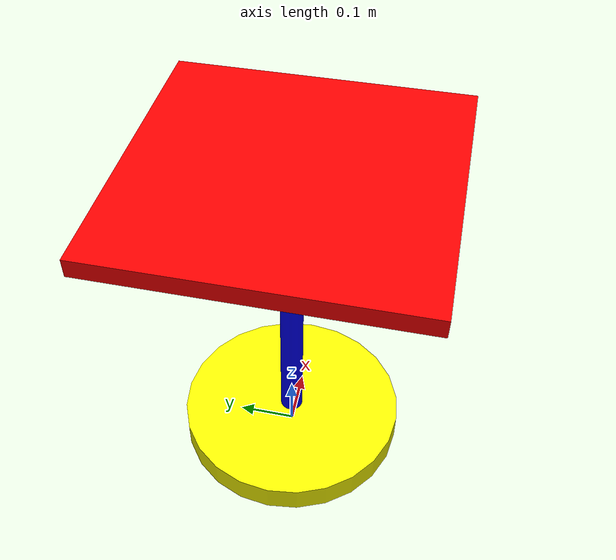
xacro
<?xml version="1.0"?>

<robot
    xmlns:xacro="http://www.ros.org/wiki/xacro"
    xmlns:sensor="htttp:/playerstage.sourceforce.net/gazebo/xmlschema/#sensor"
    xmlns:controller="htttp:/playerstage.sourceforce.net/gazebo/xmlschema/#controller"
    xmlns:interface="htttp:/playerstage.sourceforce.net/gazebo/xmlschema/#interface"
    name="pan_tilt" >

    <xacro:property name="base_link_length" value="0.05"  />
    <xacro:property name="base_link_radius" value="0.2"  />

    <xacro:property name="pan_link_length" value="0.5"  />
    <xacro:property name="pan_link_radius" value="0.02"  />

    <xacro:property name="bearing_radius" value="0.02"  />

    <xacro:property name="tilt_link_size" value="0.5 0.5 0.03"  />

    <xacro:macro name="inertial_matrix" params="mass">
        <inertial>
            <mass value="${mass}"/>
            <inertia ixx="1" ixy="0" ixz="0" iyy="1" iyz="0" izz="1" />
        </inertial>
    </xacro:macro>

    <material name="yellow">
        <color rgba="1 1 0 1" />
    </material>
    <material name="blue">
        <color rgba="0 0 1 1" />
    </material>
    <material name="white">
        <color rgba="1 1 1 1" />
    </material>
    <material name="green">
        <color rgba="1 0 0 1" />
    </material>

    <link name="base_link">
        <visual>
            <geometry>
                <cylinder length="${base_link_length}" radius="${base_link_radius}"/>
            </geometry>
            <origin xyz="0 0 0.025" rpy="0 0 0 " />
            <material name="yellow" />
        </visual>
        <collision>
            <geometry>
                <cylinder length="${base_link_length+0.05}" radius="${base_link_radius+0.05}"/>
            </geometry>
            <origin xyz="0 0 0.025" rpy="0 0 0 " />
        </collision>
        <!-- KDL does not support a root link with an inertia.
            As a workaround, you can add an extra dummy link to your URDF. -->
    </link>

    <link name="pan_link">
        <visual>
            <geometry>
                <cylinder length="${pan_link_length}" radius="${pan_link_radius}" />
            </geometry>
            <origin xyz="0 0 0.25" rpy="0 0 0 " />
            <material name="blue" />
        </visual>
        <collision>
            <geometry>
                <cylinder length="${pan_link_length+0.05}" radius="${pan_link_radius+0.05}" />
            </geometry>
            <origin xyz="0 0 0.25" rpy="0 0 0 " />
        </collision>
        <xacro:inertial_matrix mass="1" />
    </link>

    <joint name="pan_joint"  type="revolute">
        <parent link="base_link" />
        <child link="pan_link" />
        <origin xyz="0 0 0.05" rpy="0 0 0 " />
        <axis xyz="0 0 1" /> <!-- Only rotate in Z-Axis -->

        <limit effort="300" velocity="1" lower="-3.14" upper="3.14" />
        <dynamics damping="50" friction="0.0" />
    </joint>

    <link name="bearing">
        <visual>
            <origin xyz="0 0 0" rpy="0 0 0 " />
            <geometry>
                <sphere radius="${bearing_radius}" />
            </geometry>
            <material name="white" />
        </visual>
        <collision>
            <origin xyz="0 0 0" rpy="0 0 0 " />
            <geometry>
                <sphere radius="${bearing_radius+0.05}" />
            </geometry>
        </collision>
        <xacro:inertial_matrix mass="1" />
    </link>

    <joint name="bearing_joint" type="fixed">
        <parent link="pan_link" />
        <child link="bearing" />
        <origin xyz="0 0 0.5" rpy="0 0 0 " />
    </joint>

    <link name="tilt_link">
        <visual>
            <origin xyz="0 0 0" rpy="0 0 0 " />
            <geometry>
                <box size="${tilt_link_size}" />
            </geometry>
            <material name="green" />
        </visual>
        <collision>
            <origin xyz="0 0 0" rpy="0 0 0 " />
            <geometry>
                <box size="0.55 0.55 0.035" />
            </geometry>
        </collision>
        <xacro:inertial_matrix mass="1" />
    </link>

    <joint name="tilt_joint" type="revolute">
        <parent link="bearing" />
        <child link="tilt_link" />
        <origin xyz="0 0 0.035" rpy="0 0 0 " />

        <limit effort="300" velocity="1" lower="-1.3" upper="1.3" />
        <dynamics damping="5.0" friction="0.0" />
    </joint>

</robot>
